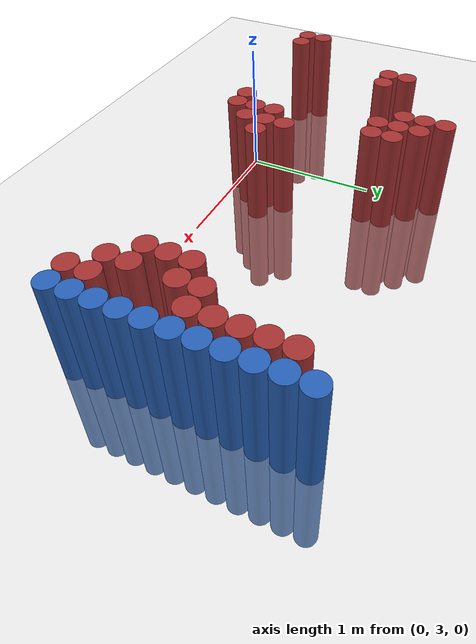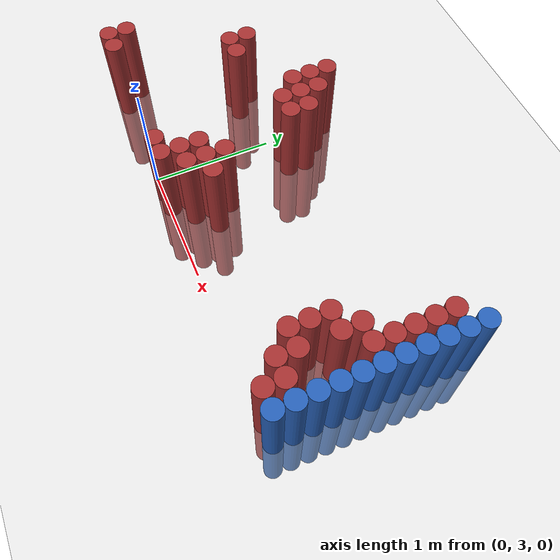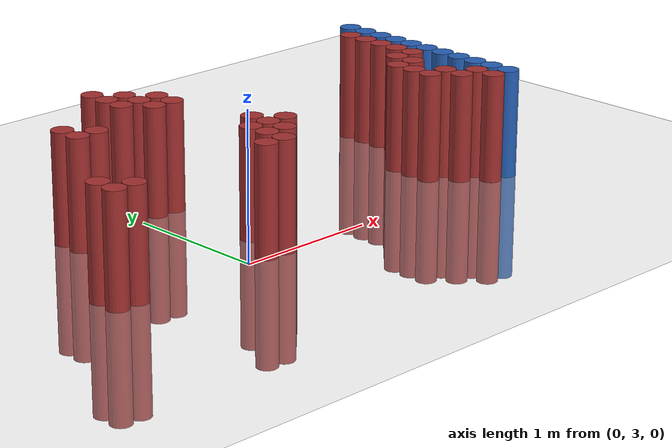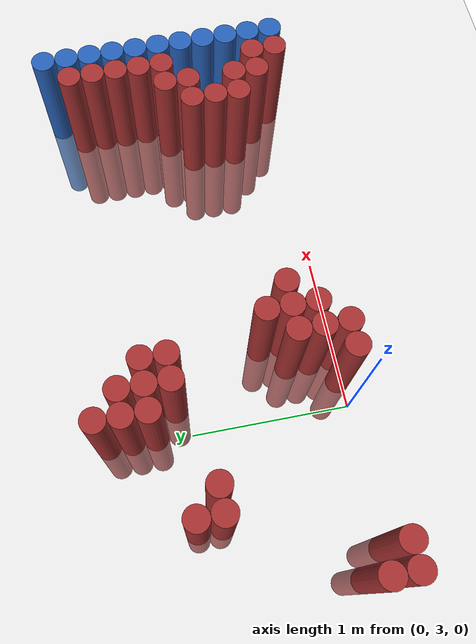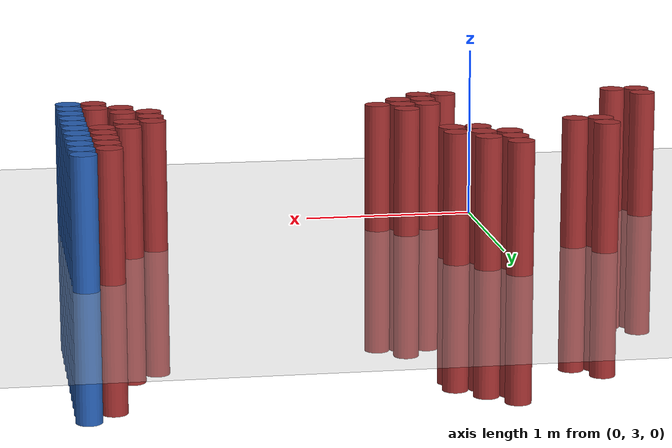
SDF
<sdf version="1.6">
 <world name="default">
  <model name="ground_plane">
   <static>1</static>
   <link name="link">
    <collision name="collision">
     <geometry><plane><normal>0 0 1</normal><size>100 100</size></plane></geometry>
     <surface><friction><ode><mu>100</mu><mu2>50</mu2></ode></friction></surface>
    </collision>
    <visual name="visual">
     <cast_shadows>0</cast_shadows>
     <geometry><plane><normal>0 0 1</normal><size>100 100</size></plane></geometry>
     <material>
      <script><uri>file://media/materials/scripts/gazebo.material</uri><name>Gazebo/Grey</name></script>
     </material>
    </visual>
   </link>
  </model>
  <model name="unit_cylinder_161">
   <static>1</static>
   <pose>-1.025000 3.025000 0.000000 0.000000 0.000000 0.000000</pose>
   <link name="link">
    <inertial>
     <mass>1</mass>
     <inertia><ixx>0.145833</ixx><ixy>0</ixy><ixz>0</ixz><iyy>0.145833</iyy><iyz>0</iyz><izz>0.125</izz></inertia>
    </inertial>
    <collision name="collision">
     <geometry><cylinder><radius>0.075000</radius><length>1.5</length></cylinder></geometry>
    </collision>
    <visual name="visual">
     <geometry><cylinder><radius>0.075000</radius><length>1.5</length></cylinder></geometry>
     <material>
      <ambient>0.648000 0.192000 0.192000 1</ambient>
      <diffuse>0.648000 0.192000 0.192000 1</diffuse>
     </material>
     <material>
      <script><name>Gazebo/Grey</name><uri>file://media/materials/scripts/gazebo.material</uri></script>
     </material>
    </visual>
   </link>
  </model>
  <model name="unit_cylinder_162">
   <static>1</static>
   <pose>-1.025000 3.175000 0.000000 0.000000 0.000000 0.000000</pose>
   <link name="link">
    <inertial>
     <mass>1</mass>
     <inertia><ixx>0.145833</ixx><ixy>0</ixy><ixz>0</ixz><iyy>0.145833</iyy><iyz>0</iyz><izz>0.125</izz></inertia>
    </inertial>
    <collision name="collision">
     <geometry><cylinder><radius>0.075000</radius><length>1.5</length></cylinder></geometry>
    </collision>
    <visual name="visual">
     <geometry><cylinder><radius>0.075000</radius><length>1.5</length></cylinder></geometry>
     <material>
      <ambient>0.648000 0.192000 0.192000 1</ambient>
      <diffuse>0.648000 0.192000 0.192000 1</diffuse>
     </material>
     <material>
      <script><name>Gazebo/Grey</name><uri>file://media/materials/scripts/gazebo.material</uri></script>
     </material>
    </visual>
   </link>
  </model>
  <model name="unit_cylinder_169">
   <static>1</static>
   <pose>-0.875000 3.025000 0.000000 0.000000 0.000000 0.000000</pose>
   <link name="link">
    <inertial>
     <mass>1</mass>
     <inertia><ixx>0.145833</ixx><ixy>0</ixy><ixz>0</ixz><iyy>0.145833</iyy><iyz>0</iyz><izz>0.125</izz></inertia>
    </inertial>
    <collision name="collision">
     <geometry><cylinder><radius>0.075000</radius><length>1.5</length></cylinder></geometry>
    </collision>
    <visual name="visual">
     <geometry><cylinder><radius>0.075000</radius><length>1.5</length></cylinder></geometry>
     <material>
      <ambient>0.648000 0.192000 0.192000 1</ambient>
      <diffuse>0.648000 0.192000 0.192000 1</diffuse>
     </material>
     <material>
      <script><name>Gazebo/Grey</name><uri>file://media/materials/scripts/gazebo.material</uri></script>
     </material>
    </visual>
   </link>
  </model>
  <model name="unit_cylinder_175">
   <static>1</static>
   <pose>-0.575000 3.925000 0.000000 0.000000 0.000000 0.000000</pose>
   <link name="link">
    <inertial>
     <mass>1</mass>
     <inertia><ixx>0.145833</ixx><ixy>0</ixy><ixz>0</ixz><iyy>0.145833</iyy><iyz>0</iyz><izz>0.125</izz></inertia>
    </inertial>
    <collision name="collision">
     <geometry><cylinder><radius>0.075000</radius><length>1.5</length></cylinder></geometry>
    </collision>
    <visual name="visual">
     <geometry><cylinder><radius>0.075000</radius><length>1.5</length></cylinder></geometry>
     <material>
      <ambient>0.648000 0.192000 0.192000 1</ambient>
      <diffuse>0.648000 0.192000 0.192000 1</diffuse>
     </material>
     <material>
      <script><name>Gazebo/Grey</name><uri>file://media/materials/scripts/gazebo.material</uri></script>
     </material>
    </visual>
   </link>
  </model>
  <model name="unit_cylinder_176">
   <static>1</static>
   <pose>-0.575000 4.075000 0.000000 0.000000 0.000000 0.000000</pose>
   <link name="link">
    <inertial>
     <mass>1</mass>
     <inertia><ixx>0.145833</ixx><ixy>0</ixy><ixz>0</ixz><iyy>0.145833</iyy><iyz>0</iyz><izz>0.125</izz></inertia>
    </inertial>
    <collision name="collision">
     <geometry><cylinder><radius>0.075000</radius><length>1.5</length></cylinder></geometry>
    </collision>
    <visual name="visual">
     <geometry><cylinder><radius>0.075000</radius><length>1.5</length></cylinder></geometry>
     <material>
      <ambient>0.648000 0.192000 0.192000 1</ambient>
      <diffuse>0.648000 0.192000 0.192000 1</diffuse>
     </material>
     <material>
      <script><name>Gazebo/Grey</name><uri>file://media/materials/scripts/gazebo.material</uri></script>
     </material>
    </visual>
   </link>
  </model>
  <model name="unit_cylinder_177">
   <static>1</static>
   <pose>-0.425000 3.925000 0.000000 0.000000 0.000000 0.000000</pose>
   <link name="link">
    <inertial>
     <mass>1</mass>
     <inertia><ixx>0.145833</ixx><ixy>0</ixy><ixz>0</ixz><iyy>0.145833</iyy><iyz>0</iyz><izz>0.125</izz></inertia>
    </inertial>
    <collision name="collision">
     <geometry><cylinder><radius>0.075000</radius><length>1.5</length></cylinder></geometry>
    </collision>
    <visual name="visual">
     <geometry><cylinder><radius>0.075000</radius><length>1.5</length></cylinder></geometry>
     <material>
      <ambient>0.648000 0.192000 0.192000 1</ambient>
      <diffuse>0.648000 0.192000 0.192000 1</diffuse>
     </material>
     <material>
      <script><name>Gazebo/Grey</name><uri>file://media/materials/scripts/gazebo.material</uri></script>
     </material>
    </visual>
   </link>
  </model>
  <model name="unit_cylinder_178">
   <static>1</static>
   <pose>0.025000 4.225000 0.000000 0.000000 0.000000 0.000000</pose>
   <link name="link">
    <inertial>
     <mass>1</mass>
     <inertia><ixx>0.145833</ixx><ixy>0</ixy><ixz>0</ixz><iyy>0.145833</iyy><iyz>0</iyz><izz>0.125</izz></inertia>
    </inertial>
    <collision name="collision">
     <geometry><cylinder><radius>0.075000</radius><length>1.5</length></cylinder></geometry>
    </collision>
    <visual name="visual">
     <geometry><cylinder><radius>0.075000</radius><length>1.5</length></cylinder></geometry>
     <material>
      <ambient>0.648000 0.192000 0.192000 1</ambient>
      <diffuse>0.648000 0.192000 0.192000 1</diffuse>
     </material>
     <material>
      <script><name>Gazebo/Grey</name><uri>file://media/materials/scripts/gazebo.material</uri></script>
     </material>
    </visual>
   </link>
  </model>
  <model name="unit_cylinder_179">
   <static>1</static>
   <pose>0.025000 4.375000 0.000000 0.000000 0.000000 0.000000</pose>
   <link name="link">
    <inertial>
     <mass>1</mass>
     <inertia><ixx>0.145833</ixx><ixy>0</ixy><ixz>0</ixz><iyy>0.145833</iyy><iyz>0</iyz><izz>0.125</izz></inertia>
    </inertial>
    <collision name="collision">
     <geometry><cylinder><radius>0.075000</radius><length>1.5</length></cylinder></geometry>
    </collision>
    <visual name="visual">
     <geometry><cylinder><radius>0.075000</radius><length>1.5</length></cylinder></geometry>
     <material>
      <ambient>0.648000 0.192000 0.192000 1</ambient>
      <diffuse>0.648000 0.192000 0.192000 1</diffuse>
     </material>
     <material>
      <script><name>Gazebo/Grey</name><uri>file://media/materials/scripts/gazebo.material</uri></script>
     </material>
    </visual>
   </link>
  </model>
  <model name="unit_cylinder_180">
   <static>1</static>
   <pose>0.025000 4.525000 0.000000 0.000000 0.000000 0.000000</pose>
   <link name="link">
    <inertial>
     <mass>1</mass>
     <inertia><ixx>0.145833</ixx><ixy>0</ixy><ixz>0</ixz><iyy>0.145833</iyy><iyz>0</iyz><izz>0.125</izz></inertia>
    </inertial>
    <collision name="collision">
     <geometry><cylinder><radius>0.075000</radius><length>1.5</length></cylinder></geometry>
    </collision>
    <visual name="visual">
     <geometry><cylinder><radius>0.075000</radius><length>1.5</length></cylinder></geometry>
     <material>
      <ambient>0.648000 0.192000 0.192000 1</ambient>
      <diffuse>0.648000 0.192000 0.192000 1</diffuse>
     </material>
     <material>
      <script><name>Gazebo/Grey</name><uri>file://media/materials/scripts/gazebo.material</uri></script>
     </material>
    </visual>
   </link>
  </model>
  <model name="unit_cylinder_181">
   <static>1</static>
   <pose>0.175000 3.025000 0.000000 0.000000 0.000000 0.000000</pose>
   <link name="link">
    <inertial>
     <mass>1</mass>
     <inertia><ixx>0.145833</ixx><ixy>0</ixy><ixz>0</ixz><iyy>0.145833</iyy><iyz>0</iyz><izz>0.125</izz></inertia>
    </inertial>
    <collision name="collision">
     <geometry><cylinder><radius>0.075000</radius><length>1.5</length></cylinder></geometry>
    </collision>
    <visual name="visual">
     <geometry><cylinder><radius>0.075000</radius><length>1.5</length></cylinder></geometry>
     <material>
      <ambient>0.648000 0.192000 0.192000 1</ambient>
      <diffuse>0.648000 0.192000 0.192000 1</diffuse>
     </material>
     <material>
      <script><name>Gazebo/Grey</name><uri>file://media/materials/scripts/gazebo.material</uri></script>
     </material>
    </visual>
   </link>
  </model>
  <model name="unit_cylinder_182">
   <static>1</static>
   <pose>0.175000 4.075000 0.000000 0.000000 0.000000 0.000000</pose>
   <link name="link">
    <inertial>
     <mass>1</mass>
     <inertia><ixx>0.145833</ixx><ixy>0</ixy><ixz>0</ixz><iyy>0.145833</iyy><iyz>0</iyz><izz>0.125</izz></inertia>
    </inertial>
    <collision name="collision">
     <geometry><cylinder><radius>0.075000</radius><length>1.5</length></cylinder></geometry>
    </collision>
    <visual name="visual">
     <geometry><cylinder><radius>0.075000</radius><length>1.5</length></cylinder></geometry>
     <material>
      <ambient>0.648000 0.192000 0.192000 1</ambient>
      <diffuse>0.648000 0.192000 0.192000 1</diffuse>
     </material>
     <material>
      <script><name>Gazebo/Grey</name><uri>file://media/materials/scripts/gazebo.material</uri></script>
     </material>
    </visual>
   </link>
  </model>
  <model name="unit_cylinder_183">
   <static>1</static>
   <pose>0.175000 4.225000 0.000000 0.000000 0.000000 0.000000</pose>
   <link name="link">
    <inertial>
     <mass>1</mass>
     <inertia><ixx>0.145833</ixx><ixy>0</ixy><ixz>0</ixz><iyy>0.145833</iyy><iyz>0</iyz><izz>0.125</izz></inertia>
    </inertial>
    <collision name="collision">
     <geometry><cylinder><radius>0.075000</radius><length>1.5</length></cylinder></geometry>
    </collision>
    <visual name="visual">
     <geometry><cylinder><radius>0.075000</radius><length>1.5</length></cylinder></geometry>
     <material>
      <ambient>0.648000 0.192000 0.192000 1</ambient>
      <diffuse>0.648000 0.192000 0.192000 1</diffuse>
     </material>
     <material>
      <script><name>Gazebo/Grey</name><uri>file://media/materials/scripts/gazebo.material</uri></script>
     </material>
    </visual>
   </link>
  </model>
  <model name="unit_cylinder_184">
   <static>1</static>
   <pose>0.175000 4.375000 0.000000 0.000000 0.000000 0.000000</pose>
   <link name="link">
    <inertial>
     <mass>1</mass>
     <inertia><ixx>0.145833</ixx><ixy>0</ixy><ixz>0</ixz><iyy>0.145833</iyy><iyz>0</iyz><izz>0.125</izz></inertia>
    </inertial>
    <collision name="collision">
     <geometry><cylinder><radius>0.075000</radius><length>1.5</length></cylinder></geometry>
    </collision>
    <visual name="visual">
     <geometry><cylinder><radius>0.075000</radius><length>1.5</length></cylinder></geometry>
     <material>
      <ambient>0.648000 0.192000 0.192000 1</ambient>
      <diffuse>0.648000 0.192000 0.192000 1</diffuse>
     </material>
     <material>
      <script><name>Gazebo/Grey</name><uri>file://media/materials/scripts/gazebo.material</uri></script>
     </material>
    </visual>
   </link>
  </model>
  <model name="unit_cylinder_186">
   <static>1</static>
   <pose>0.325000 3.025000 0.000000 0.000000 0.000000 0.000000</pose>
   <link name="link">
    <inertial>
     <mass>1</mass>
     <inertia><ixx>0.145833</ixx><ixy>0</ixy><ixz>0</ixz><iyy>0.145833</iyy><iyz>0</iyz><izz>0.125</izz></inertia>
    </inertial>
    <collision name="collision">
     <geometry><cylinder><radius>0.075000</radius><length>1.5</length></cylinder></geometry>
    </collision>
    <visual name="visual">
     <geometry><cylinder><radius>0.075000</radius><length>1.5</length></cylinder></geometry>
     <material>
      <ambient>0.648000 0.192000 0.192000 1</ambient>
      <diffuse>0.648000 0.192000 0.192000 1</diffuse>
     </material>
     <material>
      <script><name>Gazebo/Grey</name><uri>file://media/materials/scripts/gazebo.material</uri></script>
     </material>
    </visual>
   </link>
  </model>
  <model name="unit_cylinder_187">
   <static>1</static>
   <pose>0.325000 3.175000 0.000000 0.000000 0.000000 0.000000</pose>
   <link name="link">
    <inertial>
     <mass>1</mass>
     <inertia><ixx>0.145833</ixx><ixy>0</ixy><ixz>0</ixz><iyy>0.145833</iyy><iyz>0</iyz><izz>0.125</izz></inertia>
    </inertial>
    <collision name="collision">
     <geometry><cylinder><radius>0.075000</radius><length>1.5</length></cylinder></geometry>
    </collision>
    <visual name="visual">
     <geometry><cylinder><radius>0.075000</radius><length>1.5</length></cylinder></geometry>
     <material>
      <ambient>0.648000 0.192000 0.192000 1</ambient>
      <diffuse>0.648000 0.192000 0.192000 1</diffuse>
     </material>
     <material>
      <script><name>Gazebo/Grey</name><uri>file://media/materials/scripts/gazebo.material</uri></script>
     </material>
    </visual>
   </link>
  </model>
  <model name="unit_cylinder_188">
   <static>1</static>
   <pose>0.325000 3.325000 0.000000 0.000000 0.000000 0.000000</pose>
   <link name="link">
    <inertial>
     <mass>1</mass>
     <inertia><ixx>0.145833</ixx><ixy>0</ixy><ixz>0</ixz><iyy>0.145833</iyy><iyz>0</iyz><izz>0.125</izz></inertia>
    </inertial>
    <collision name="collision">
     <geometry><cylinder><radius>0.075000</radius><length>1.5</length></cylinder></geometry>
    </collision>
    <visual name="visual">
     <geometry><cylinder><radius>0.075000</radius><length>1.5</length></cylinder></geometry>
     <material>
      <ambient>0.648000 0.192000 0.192000 1</ambient>
      <diffuse>0.648000 0.192000 0.192000 1</diffuse>
     </material>
     <material>
      <script><name>Gazebo/Grey</name><uri>file://media/materials/scripts/gazebo.material</uri></script>
     </material>
    </visual>
   </link>
  </model>
  <model name="unit_cylinder_189">
   <static>1</static>
   <pose>0.325000 4.075000 0.000000 0.000000 0.000000 0.000000</pose>
   <link name="link">
    <inertial>
     <mass>1</mass>
     <inertia><ixx>0.145833</ixx><ixy>0</ixy><ixz>0</ixz><iyy>0.145833</iyy><iyz>0</iyz><izz>0.125</izz></inertia>
    </inertial>
    <collision name="collision">
     <geometry><cylinder><radius>0.075000</radius><length>1.5</length></cylinder></geometry>
    </collision>
    <visual name="visual">
     <geometry><cylinder><radius>0.075000</radius><length>1.5</length></cylinder></geometry>
     <material>
      <ambient>0.648000 0.192000 0.192000 1</ambient>
      <diffuse>0.648000 0.192000 0.192000 1</diffuse>
     </material>
     <material>
      <script><name>Gazebo/Grey</name><uri>file://media/materials/scripts/gazebo.material</uri></script>
     </material>
    </visual>
   </link>
  </model>
  <model name="unit_cylinder_190">
   <static>1</static>
   <pose>0.325000 4.225000 0.000000 0.000000 0.000000 0.000000</pose>
   <link name="link">
    <inertial>
     <mass>1</mass>
     <inertia><ixx>0.145833</ixx><ixy>0</ixy><ixz>0</ixz><iyy>0.145833</iyy><iyz>0</iyz><izz>0.125</izz></inertia>
    </inertial>
    <collision name="collision">
     <geometry><cylinder><radius>0.075000</radius><length>1.5</length></cylinder></geometry>
    </collision>
    <visual name="visual">
     <geometry><cylinder><radius>0.075000</radius><length>1.5</length></cylinder></geometry>
     <material>
      <ambient>0.648000 0.192000 0.192000 1</ambient>
      <diffuse>0.648000 0.192000 0.192000 1</diffuse>
     </material>
     <material>
      <script><name>Gazebo/Grey</name><uri>file://media/materials/scripts/gazebo.material</uri></script>
     </material>
    </visual>
   </link>
  </model>
  <model name="unit_cylinder_191">
   <static>1</static>
   <pose>0.475000 3.175000 0.000000 0.000000 0.000000 0.000000</pose>
   <link name="link">
    <inertial>
     <mass>1</mass>
     <inertia><ixx>0.145833</ixx><ixy>0</ixy><ixz>0</ixz><iyy>0.145833</iyy><iyz>0</iyz><izz>0.125</izz></inertia>
    </inertial>
    <collision name="collision">
     <geometry><cylinder><radius>0.075000</radius><length>1.5</length></cylinder></geometry>
    </collision>
    <visual name="visual">
     <geometry><cylinder><radius>0.075000</radius><length>1.5</length></cylinder></geometry>
     <material>
      <ambient>0.648000 0.192000 0.192000 1</ambient>
      <diffuse>0.648000 0.192000 0.192000 1</diffuse>
     </material>
     <material>
      <script><name>Gazebo/Grey</name><uri>file://media/materials/scripts/gazebo.material</uri></script>
     </material>
    </visual>
   </link>
  </model>
  <model name="unit_cylinder_192">
   <static>1</static>
   <pose>0.475000 3.325000 0.000000 0.000000 0.000000 0.000000</pose>
   <link name="link">
    <inertial>
     <mass>1</mass>
     <inertia><ixx>0.145833</ixx><ixy>0</ixy><ixz>0</ixz><iyy>0.145833</iyy><iyz>0</iyz><izz>0.125</izz></inertia>
    </inertial>
    <collision name="collision">
     <geometry><cylinder><radius>0.075000</radius><length>1.5</length></cylinder></geometry>
    </collision>
    <visual name="visual">
     <geometry><cylinder><radius>0.075000</radius><length>1.5</length></cylinder></geometry>
     <material>
      <ambient>0.648000 0.192000 0.192000 1</ambient>
      <diffuse>0.648000 0.192000 0.192000 1</diffuse>
     </material>
     <material>
      <script><name>Gazebo/Grey</name><uri>file://media/materials/scripts/gazebo.material</uri></script>
     </material>
    </visual>
   </link>
  </model>
  <model name="unit_cylinder_193">
   <static>1</static>
   <pose>0.475000 3.475000 0.000000 0.000000 0.000000 0.000000</pose>
   <link name="link">
    <inertial>
     <mass>1</mass>
     <inertia><ixx>0.145833</ixx><ixy>0</ixy><ixz>0</ixz><iyy>0.145833</iyy><iyz>0</iyz><izz>0.125</izz></inertia>
    </inertial>
    <collision name="collision">
     <geometry><cylinder><radius>0.075000</radius><length>1.5</length></cylinder></geometry>
    </collision>
    <visual name="visual">
     <geometry><cylinder><radius>0.075000</radius><length>1.5</length></cylinder></geometry>
     <material>
      <ambient>0.648000 0.192000 0.192000 1</ambient>
      <diffuse>0.648000 0.192000 0.192000 1</diffuse>
     </material>
     <material>
      <script><name>Gazebo/Grey</name><uri>file://media/materials/scripts/gazebo.material</uri></script>
     </material>
    </visual>
   </link>
  </model>
  <model name="unit_cylinder_194">
   <static>1</static>
   <pose>0.625000 3.325000 0.000000 0.000000 0.000000 0.000000</pose>
   <link name="link">
    <inertial>
     <mass>1</mass>
     <inertia><ixx>0.145833</ixx><ixy>0</ixy><ixz>0</ixz><iyy>0.145833</iyy><iyz>0</iyz><izz>0.125</izz></inertia>
    </inertial>
    <collision name="collision">
     <geometry><cylinder><radius>0.075000</radius><length>1.5</length></cylinder></geometry>
    </collision>
    <visual name="visual">
     <geometry><cylinder><radius>0.075000</radius><length>1.5</length></cylinder></geometry>
     <material>
      <ambient>0.648000 0.192000 0.192000 1</ambient>
      <diffuse>0.648000 0.192000 0.192000 1</diffuse>
     </material>
     <material>
      <script><name>Gazebo/Grey</name><uri>file://media/materials/scripts/gazebo.material</uri></script>
     </material>
    </visual>
   </link>
  </model>
  <model name="unit_cylinder_219">
   <static>1</static>
   <pose>1.975000 3.325000 0.000000 0.000000 0.000000 0.000000</pose>
   <link name="link">
    <inertial>
     <mass>1</mass>
     <inertia><ixx>0.145833</ixx><ixy>0</ixy><ixz>0</ixz><iyy>0.145833</iyy><iyz>0</iyz><izz>0.125</izz></inertia>
    </inertial>
    <collision name="collision">
     <geometry><cylinder><radius>0.075000</radius><length>1.5</length></cylinder></geometry>
    </collision>
    <visual name="visual">
     <geometry><cylinder><radius>0.075000</radius><length>1.5</length></cylinder></geometry>
     <material>
      <ambient>0.648000 0.192000 0.192000 1</ambient>
      <diffuse>0.648000 0.192000 0.192000 1</diffuse>
     </material>
     <material>
      <script><name>Gazebo/Grey</name><uri>file://media/materials/scripts/gazebo.material</uri></script>
     </material>
    </visual>
   </link>
  </model>
  <model name="unit_cylinder_220">
   <static>1</static>
   <pose>1.975000 3.475000 0.000000 0.000000 0.000000 0.000000</pose>
   <link name="link">
    <inertial>
     <mass>1</mass>
     <inertia><ixx>0.145833</ixx><ixy>0</ixy><ixz>0</ixz><iyy>0.145833</iyy><iyz>0</iyz><izz>0.125</izz></inertia>
    </inertial>
    <collision name="collision">
     <geometry><cylinder><radius>0.075000</radius><length>1.5</length></cylinder></geometry>
    </collision>
    <visual name="visual">
     <geometry><cylinder><radius>0.075000</radius><length>1.5</length></cylinder></geometry>
     <material>
      <ambient>0.648000 0.192000 0.192000 1</ambient>
      <diffuse>0.648000 0.192000 0.192000 1</diffuse>
     </material>
     <material>
      <script><name>Gazebo/Grey</name><uri>file://media/materials/scripts/gazebo.material</uri></script>
     </material>
    </visual>
   </link>
  </model>
  <model name="unit_cylinder_221">
   <static>1</static>
   <pose>1.975000 3.625000 0.000000 0.000000 0.000000 0.000000</pose>
   <link name="link">
    <inertial>
     <mass>1</mass>
     <inertia><ixx>0.145833</ixx><ixy>0</ixy><ixz>0</ixz><iyy>0.145833</iyy><iyz>0</iyz><izz>0.125</izz></inertia>
    </inertial>
    <collision name="collision">
     <geometry><cylinder><radius>0.075000</radius><length>1.5</length></cylinder></geometry>
    </collision>
    <visual name="visual">
     <geometry><cylinder><radius>0.075000</radius><length>1.5</length></cylinder></geometry>
     <material>
      <ambient>0.648000 0.192000 0.192000 1</ambient>
      <diffuse>0.648000 0.192000 0.192000 1</diffuse>
     </material>
     <material>
      <script><name>Gazebo/Grey</name><uri>file://media/materials/scripts/gazebo.material</uri></script>
     </material>
    </visual>
   </link>
  </model>
  <model name="unit_cylinder_226">
   <static>1</static>
   <pose>2.125000 3.175000 0.000000 0.000000 0.000000 0.000000</pose>
   <link name="link">
    <inertial>
     <mass>1</mass>
     <inertia><ixx>0.145833</ixx><ixy>0</ixy><ixz>0</ixz><iyy>0.145833</iyy><iyz>0</iyz><izz>0.125</izz></inertia>
    </inertial>
    <collision name="collision">
     <geometry><cylinder><radius>0.075000</radius><length>1.5</length></cylinder></geometry>
    </collision>
    <visual name="visual">
     <geometry><cylinder><radius>0.075000</radius><length>1.5</length></cylinder></geometry>
     <material>
      <ambient>0.648000 0.192000 0.192000 1</ambient>
      <diffuse>0.648000 0.192000 0.192000 1</diffuse>
     </material>
     <material>
      <script><name>Gazebo/Grey</name><uri>file://media/materials/scripts/gazebo.material</uri></script>
     </material>
    </visual>
   </link>
  </model>
  <model name="unit_cylinder_227">
   <static>1</static>
   <pose>2.125000 3.325000 0.000000 0.000000 0.000000 0.000000</pose>
   <link name="link">
    <inertial>
     <mass>1</mass>
     <inertia><ixx>0.145833</ixx><ixy>0</ixy><ixz>0</ixz><iyy>0.145833</iyy><iyz>0</iyz><izz>0.125</izz></inertia>
    </inertial>
    <collision name="collision">
     <geometry><cylinder><radius>0.075000</radius><length>1.5</length></cylinder></geometry>
    </collision>
    <visual name="visual">
     <geometry><cylinder><radius>0.075000</radius><length>1.5</length></cylinder></geometry>
     <material>
      <ambient>0.648000 0.192000 0.192000 1</ambient>
      <diffuse>0.648000 0.192000 0.192000 1</diffuse>
     </material>
     <material>
      <script><name>Gazebo/Grey</name><uri>file://media/materials/scripts/gazebo.material</uri></script>
     </material>
    </visual>
   </link>
  </model>
  <model name="unit_cylinder_228">
   <static>1</static>
   <pose>2.125000 3.625000 0.000000 0.000000 0.000000 0.000000</pose>
   <link name="link">
    <inertial>
     <mass>1</mass>
     <inertia><ixx>0.145833</ixx><ixy>0</ixy><ixz>0</ixz><iyy>0.145833</iyy><iyz>0</iyz><izz>0.125</izz></inertia>
    </inertial>
    <collision name="collision">
     <geometry><cylinder><radius>0.075000</radius><length>1.5</length></cylinder></geometry>
    </collision>
    <visual name="visual">
     <geometry><cylinder><radius>0.075000</radius><length>1.5</length></cylinder></geometry>
     <material>
      <ambient>0.648000 0.192000 0.192000 1</ambient>
      <diffuse>0.648000 0.192000 0.192000 1</diffuse>
     </material>
     <material>
      <script><name>Gazebo/Grey</name><uri>file://media/materials/scripts/gazebo.material</uri></script>
     </material>
    </visual>
   </link>
  </model>
  <model name="unit_cylinder_229">
   <static>1</static>
   <pose>2.125000 3.775000 0.000000 0.000000 0.000000 0.000000</pose>
   <link name="link">
    <inertial>
     <mass>1</mass>
     <inertia><ixx>0.145833</ixx><ixy>0</ixy><ixz>0</ixz><iyy>0.145833</iyy><iyz>0</iyz><izz>0.125</izz></inertia>
    </inertial>
    <collision name="collision">
     <geometry><cylinder><radius>0.075000</radius><length>1.5</length></cylinder></geometry>
    </collision>
    <visual name="visual">
     <geometry><cylinder><radius>0.075000</radius><length>1.5</length></cylinder></geometry>
     <material>
      <ambient>0.648000 0.192000 0.192000 1</ambient>
      <diffuse>0.648000 0.192000 0.192000 1</diffuse>
     </material>
     <material>
      <script><name>Gazebo/Grey</name><uri>file://media/materials/scripts/gazebo.material</uri></script>
     </material>
    </visual>
   </link>
  </model>
  <model name="unit_cylinder_244">
   <static>1</static>
   <pose>2.275000 3.025000 0.000000 0.000000 0.000000 0.000000</pose>
   <link name="link">
    <inertial>
     <mass>1</mass>
     <inertia><ixx>0.145833</ixx><ixy>0</ixy><ixz>0</ixz><iyy>0.145833</iyy><iyz>0</iyz><izz>0.125</izz></inertia>
    </inertial>
    <collision name="collision">
     <geometry><cylinder><radius>0.075000</radius><length>1.5</length></cylinder></geometry>
    </collision>
    <visual name="visual">
     <geometry><cylinder><radius>0.075000</radius><length>1.5</length></cylinder></geometry>
     <material>
      <ambient>0.648000 0.192000 0.192000 1</ambient>
      <diffuse>0.648000 0.192000 0.192000 1</diffuse>
     </material>
     <material>
      <script><name>Gazebo/Grey</name><uri>file://media/materials/scripts/gazebo.material</uri></script>
     </material>
    </visual>
   </link>
  </model>
  <model name="unit_cylinder_245">
   <static>1</static>
   <pose>2.275000 3.175000 0.000000 0.000000 0.000000 0.000000</pose>
   <link name="link">
    <inertial>
     <mass>1</mass>
     <inertia><ixx>0.145833</ixx><ixy>0</ixy><ixz>0</ixz><iyy>0.145833</iyy><iyz>0</iyz><izz>0.125</izz></inertia>
    </inertial>
    <collision name="collision">
     <geometry><cylinder><radius>0.075000</radius><length>1.5</length></cylinder></geometry>
    </collision>
    <visual name="visual">
     <geometry><cylinder><radius>0.075000</radius><length>1.5</length></cylinder></geometry>
     <material>
      <ambient>0.648000 0.192000 0.192000 1</ambient>
      <diffuse>0.648000 0.192000 0.192000 1</diffuse>
     </material>
     <material>
      <script><name>Gazebo/Grey</name><uri>file://media/materials/scripts/gazebo.material</uri></script>
     </material>
    </visual>
   </link>
  </model>
  <model name="unit_cylinder_246">
   <static>1</static>
   <pose>2.275000 3.775000 0.000000 0.000000 0.000000 0.000000</pose>
   <link name="link">
    <inertial>
     <mass>1</mass>
     <inertia><ixx>0.145833</ixx><ixy>0</ixy><ixz>0</ixz><iyy>0.145833</iyy><iyz>0</iyz><izz>0.125</izz></inertia>
    </inertial>
    <collision name="collision">
     <geometry><cylinder><radius>0.075000</radius><length>1.5</length></cylinder></geometry>
    </collision>
    <visual name="visual">
     <geometry><cylinder><radius>0.075000</radius><length>1.5</length></cylinder></geometry>
     <material>
      <ambient>0.648000 0.192000 0.192000 1</ambient>
      <diffuse>0.648000 0.192000 0.192000 1</diffuse>
     </material>
     <material>
      <script><name>Gazebo/Grey</name><uri>file://media/materials/scripts/gazebo.material</uri></script>
     </material>
    </visual>
   </link>
  </model>
  <model name="unit_cylinder_247">
   <static>1</static>
   <pose>2.275000 3.925000 0.000000 0.000000 0.000000 0.000000</pose>
   <link name="link">
    <inertial>
     <mass>1</mass>
     <inertia><ixx>0.145833</ixx><ixy>0</ixy><ixz>0</ixz><iyy>0.145833</iyy><iyz>0</iyz><izz>0.125</izz></inertia>
    </inertial>
    <collision name="collision">
     <geometry><cylinder><radius>0.075000</radius><length>1.5</length></cylinder></geometry>
    </collision>
    <visual name="visual">
     <geometry><cylinder><radius>0.075000</radius><length>1.5</length></cylinder></geometry>
     <material>
      <ambient>0.648000 0.192000 0.192000 1</ambient>
      <diffuse>0.648000 0.192000 0.192000 1</diffuse>
     </material>
     <material>
      <script><name>Gazebo/Grey</name><uri>file://media/materials/scripts/gazebo.material</uri></script>
     </material>
    </visual>
   </link>
  </model>
  <model name="unit_cylinder_248">
   <static>1</static>
   <pose>2.275000 4.075000 0.000000 0.000000 0.000000 0.000000</pose>
   <link name="link">
    <inertial>
     <mass>1</mass>
     <inertia><ixx>0.145833</ixx><ixy>0</ixy><ixz>0</ixz><iyy>0.145833</iyy><iyz>0</iyz><izz>0.125</izz></inertia>
    </inertial>
    <collision name="collision">
     <geometry><cylinder><radius>0.075000</radius><length>1.5</length></cylinder></geometry>
    </collision>
    <visual name="visual">
     <geometry><cylinder><radius>0.075000</radius><length>1.5</length></cylinder></geometry>
     <material>
      <ambient>0.648000 0.192000 0.192000 1</ambient>
      <diffuse>0.648000 0.192000 0.192000 1</diffuse>
     </material>
     <material>
      <script><name>Gazebo/Grey</name><uri>file://media/materials/scripts/gazebo.material</uri></script>
     </material>
    </visual>
   </link>
  </model>
  <model name="unit_cylinder_249">
   <static>1</static>
   <pose>2.275000 4.225000 0.000000 0.000000 0.000000 0.000000</pose>
   <link name="link">
    <inertial>
     <mass>1</mass>
     <inertia><ixx>0.145833</ixx><ixy>0</ixy><ixz>0</ixz><iyy>0.145833</iyy><iyz>0</iyz><izz>0.125</izz></inertia>
    </inertial>
    <collision name="collision">
     <geometry><cylinder><radius>0.075000</radius><length>1.5</length></cylinder></geometry>
    </collision>
    <visual name="visual">
     <geometry><cylinder><radius>0.075000</radius><length>1.5</length></cylinder></geometry>
     <material>
      <ambient>0.648000 0.192000 0.192000 1</ambient>
      <diffuse>0.648000 0.192000 0.192000 1</diffuse>
     </material>
     <material>
      <script><name>Gazebo/Grey</name><uri>file://media/materials/scripts/gazebo.material</uri></script>
     </material>
    </visual>
   </link>
  </model>
  <model name="unit_cylinder_250">
   <static>1</static>
   <pose>2.275000 4.375000 0.000000 0.000000 0.000000 0.000000</pose>
   <link name="link">
    <inertial>
     <mass>1</mass>
     <inertia><ixx>0.145833</ixx><ixy>0</ixy><ixz>0</ixz><iyy>0.145833</iyy><iyz>0</iyz><izz>0.125</izz></inertia>
    </inertial>
    <collision name="collision">
     <geometry><cylinder><radius>0.075000</radius><length>1.5</length></cylinder></geometry>
    </collision>
    <visual name="visual">
     <geometry><cylinder><radius>0.075000</radius><length>1.5</length></cylinder></geometry>
     <material>
      <ambient>0.648000 0.192000 0.192000 1</ambient>
      <diffuse>0.648000 0.192000 0.192000 1</diffuse>
     </material>
     <material>
      <script><name>Gazebo/Grey</name><uri>file://media/materials/scripts/gazebo.material</uri></script>
     </material>
    </visual>
   </link>
  </model>
  <model name="unit_cylinder_270">
   <static>1</static>
   <pose>2.425000 3.025000 0.000000 0.000000 0.000000 0.000000</pose>
   <link name="link">
    <inertial>
     <mass>1</mass>
     <inertia><ixx>0.145833</ixx><ixy>0</ixy><ixz>0</ixz><iyy>0.145833</iyy><iyz>0</iyz><izz>0.125</izz></inertia>
    </inertial>
    <collision name="collision">
     <geometry><cylinder><radius>0.075000</radius><length>1.5</length></cylinder></geometry>
    </collision>
    <visual name="visual">
     <geometry><cylinder><radius>0.075000</radius><length>1.5</length></cylinder></geometry>
     <material>
      <ambient>0.152000 0.379000 0.720000 1</ambient>
      <diffuse>0.152000 0.379000 0.720000 1</diffuse>
     </material>
     <material>
      <script><name>Gazebo/Grey</name><uri>file://media/materials/scripts/gazebo.material</uri></script>
     </material>
    </visual>
   </link>
  </model>
  <model name="unit_cylinder_271">
   <static>1</static>
   <pose>2.425000 3.175000 0.000000 0.000000 0.000000 0.000000</pose>
   <link name="link">
    <inertial>
     <mass>1</mass>
     <inertia><ixx>0.145833</ixx><ixy>0</ixy><ixz>0</ixz><iyy>0.145833</iyy><iyz>0</iyz><izz>0.125</izz></inertia>
    </inertial>
    <collision name="collision">
     <geometry><cylinder><radius>0.075000</radius><length>1.5</length></cylinder></geometry>
    </collision>
    <visual name="visual">
     <geometry><cylinder><radius>0.075000</radius><length>1.5</length></cylinder></geometry>
     <material>
      <ambient>0.152000 0.379000 0.720000 1</ambient>
      <diffuse>0.152000 0.379000 0.720000 1</diffuse>
     </material>
     <material>
      <script><name>Gazebo/Grey</name><uri>file://media/materials/scripts/gazebo.material</uri></script>
     </material>
    </visual>
   </link>
  </model>
  <model name="unit_cylinder_272">
   <static>1</static>
   <pose>2.425000 3.325000 0.000000 0.000000 0.000000 0.000000</pose>
   <link name="link">
    <inertial>
     <mass>1</mass>
     <inertia><ixx>0.145833</ixx><ixy>0</ixy><ixz>0</ixz><iyy>0.145833</iyy><iyz>0</iyz><izz>0.125</izz></inertia>
    </inertial>
    <collision name="collision">
     <geometry><cylinder><radius>0.075000</radius><length>1.5</length></cylinder></geometry>
    </collision>
    <visual name="visual">
     <geometry><cylinder><radius>0.075000</radius><length>1.5</length></cylinder></geometry>
     <material>
      <ambient>0.152000 0.379000 0.720000 1</ambient>
      <diffuse>0.152000 0.379000 0.720000 1</diffuse>
     </material>
     <material>
      <script><name>Gazebo/Grey</name><uri>file://media/materials/scripts/gazebo.material</uri></script>
     </material>
    </visual>
   </link>
  </model>
  <model name="unit_cylinder_273">
   <static>1</static>
   <pose>2.425000 3.475000 0.000000 0.000000 0.000000 0.000000</pose>
   <link name="link">
    <inertial>
     <mass>1</mass>
     <inertia><ixx>0.145833</ixx><ixy>0</ixy><ixz>0</ixz><iyy>0.145833</iyy><iyz>0</iyz><izz>0.125</izz></inertia>
    </inertial>
    <collision name="collision">
     <geometry><cylinder><radius>0.075000</radius><length>1.5</length></cylinder></geometry>
    </collision>
    <visual name="visual">
     <geometry><cylinder><radius>0.075000</radius><length>1.5</length></cylinder></geometry>
     <material>
      <ambient>0.152000 0.379000 0.720000 1</ambient>
      <diffuse>0.152000 0.379000 0.720000 1</diffuse>
     </material>
     <material>
      <script><name>Gazebo/Grey</name><uri>file://media/materials/scripts/gazebo.material</uri></script>
     </material>
    </visual>
   </link>
  </model>
  <model name="unit_cylinder_274">
   <static>1</static>
   <pose>2.425000 3.625000 0.000000 0.000000 0.000000 0.000000</pose>
   <link name="link">
    <inertial>
     <mass>1</mass>
     <inertia><ixx>0.145833</ixx><ixy>0</ixy><ixz>0</ixz><iyy>0.145833</iyy><iyz>0</iyz><izz>0.125</izz></inertia>
    </inertial>
    <collision name="collision">
     <geometry><cylinder><radius>0.075000</radius><length>1.5</length></cylinder></geometry>
    </collision>
    <visual name="visual">
     <geometry><cylinder><radius>0.075000</radius><length>1.5</length></cylinder></geometry>
     <material>
      <ambient>0.152000 0.379000 0.720000 1</ambient>
      <diffuse>0.152000 0.379000 0.720000 1</diffuse>
     </material>
     <material>
      <script><name>Gazebo/Grey</name><uri>file://media/materials/scripts/gazebo.material</uri></script>
     </material>
    </visual>
   </link>
  </model>
  <model name="unit_cylinder_275">
   <static>1</static>
   <pose>2.425000 3.775000 0.000000 0.000000 0.000000 0.000000</pose>
   <link name="link">
    <inertial>
     <mass>1</mass>
     <inertia><ixx>0.145833</ixx><ixy>0</ixy><ixz>0</ixz><iyy>0.145833</iyy><iyz>0</iyz><izz>0.125</izz></inertia>
    </inertial>
    <collision name="collision">
     <geometry><cylinder><radius>0.075000</radius><length>1.5</length></cylinder></geometry>
    </collision>
    <visual name="visual">
     <geometry><cylinder><radius>0.075000</radius><length>1.5</length></cylinder></geometry>
     <material>
      <ambient>0.152000 0.379000 0.720000 1</ambient>
      <diffuse>0.152000 0.379000 0.720000 1</diffuse>
     </material>
     <material>
      <script><name>Gazebo/Grey</name><uri>file://media/materials/scripts/gazebo.material</uri></script>
     </material>
    </visual>
   </link>
  </model>
  <model name="unit_cylinder_276">
   <static>1</static>
   <pose>2.425000 3.925000 0.000000 0.000000 0.000000 0.000000</pose>
   <link name="link">
    <inertial>
     <mass>1</mass>
     <inertia><ixx>0.145833</ixx><ixy>0</ixy><ixz>0</ixz><iyy>0.145833</iyy><iyz>0</iyz><izz>0.125</izz></inertia>
    </inertial>
    <collision name="collision">
     <geometry><cylinder><radius>0.075000</radius><length>1.5</length></cylinder></geometry>
    </collision>
    <visual name="visual">
     <geometry><cylinder><radius>0.075000</radius><length>1.5</length></cylinder></geometry>
     <material>
      <ambient>0.152000 0.379000 0.720000 1</ambient>
      <diffuse>0.152000 0.379000 0.720000 1</diffuse>
     </material>
     <material>
      <script><name>Gazebo/Grey</name><uri>file://media/materials/scripts/gazebo.material</uri></script>
     </material>
    </visual>
   </link>
  </model>
  <model name="unit_cylinder_277">
   <static>1</static>
   <pose>2.425000 4.075000 0.000000 0.000000 0.000000 0.000000</pose>
   <link name="link">
    <inertial>
     <mass>1</mass>
     <inertia><ixx>0.145833</ixx><ixy>0</ixy><ixz>0</ixz><iyy>0.145833</iyy><iyz>0</iyz><izz>0.125</izz></inertia>
    </inertial>
    <collision name="collision">
     <geometry><cylinder><radius>0.075000</radius><length>1.5</length></cylinder></geometry>
    </collision>
    <visual name="visual">
     <geometry><cylinder><radius>0.075000</radius><length>1.5</length></cylinder></geometry>
     <material>
      <ambient>0.152000 0.379000 0.720000 1</ambient>
      <diffuse>0.152000 0.379000 0.720000 1</diffuse>
     </material>
     <material>
      <script><name>Gazebo/Grey</name><uri>file://media/materials/scripts/gazebo.material</uri></script>
     </material>
    </visual>
   </link>
  </model>
  <model name="unit_cylinder_278">
   <static>1</static>
   <pose>2.425000 4.225000 0.000000 0.000000 0.000000 0.000000</pose>
   <link name="link">
    <inertial>
     <mass>1</mass>
     <inertia><ixx>0.145833</ixx><ixy>0</ixy><ixz>0</ixz><iyy>0.145833</iyy><iyz>0</iyz><izz>0.125</izz></inertia>
    </inertial>
    <collision name="collision">
     <geometry><cylinder><radius>0.075000</radius><length>1.5</length></cylinder></geometry>
    </collision>
    <visual name="visual">
     <geometry><cylinder><radius>0.075000</radius><length>1.5</length></cylinder></geometry>
     <material>
      <ambient>0.152000 0.379000 0.720000 1</ambient>
      <diffuse>0.152000 0.379000 0.720000 1</diffuse>
     </material>
     <material>
      <script><name>Gazebo/Grey</name><uri>file://media/materials/scripts/gazebo.material</uri></script>
     </material>
    </visual>
   </link>
  </model>
  <model name="unit_cylinder_279">
   <static>1</static>
   <pose>2.425000 4.375000 0.000000 0.000000 0.000000 0.000000</pose>
   <link name="link">
    <inertial>
     <mass>1</mass>
     <inertia><ixx>0.145833</ixx><ixy>0</ixy><ixz>0</ixz><iyy>0.145833</iyy><iyz>0</iyz><izz>0.125</izz></inertia>
    </inertial>
    <collision name="collision">
     <geometry><cylinder><radius>0.075000</radius><length>1.5</length></cylinder></geometry>
    </collision>
    <visual name="visual">
     <geometry><cylinder><radius>0.075000</radius><length>1.5</length></cylinder></geometry>
     <material>
      <ambient>0.152000 0.379000 0.720000 1</ambient>
      <diffuse>0.152000 0.379000 0.720000 1</diffuse>
     </material>
     <material>
      <script><name>Gazebo/Grey</name><uri>file://media/materials/scripts/gazebo.material</uri></script>
     </material>
    </visual>
   </link>
  </model>
  <model name="unit_cylinder_280">
   <static>1</static>
   <pose>2.425000 4.525000 0.000000 0.000000 0.000000 0.000000</pose>
   <link name="link">
    <inertial>
     <mass>1</mass>
     <inertia><ixx>0.145833</ixx><ixy>0</ixy><ixz>0</ixz><iyy>0.145833</iyy><iyz>0</iyz><izz>0.125</izz></inertia>
    </inertial>
    <collision name="collision">
     <geometry><cylinder><radius>0.075000</radius><length>1.5</length></cylinder></geometry>
    </collision>
    <visual name="visual">
     <geometry><cylinder><radius>0.075000</radius><length>1.5</length></cylinder></geometry>
     <material>
      <ambient>0.152000 0.379000 0.720000 1</ambient>
      <diffuse>0.152000 0.379000 0.720000 1</diffuse>
     </material>
     <material>
      <script><name>Gazebo/Grey</name><uri>file://media/materials/scripts/gazebo.material</uri></script>
     </material>
    </visual>
   </link>
  </model>
 </world>
</sdf>
